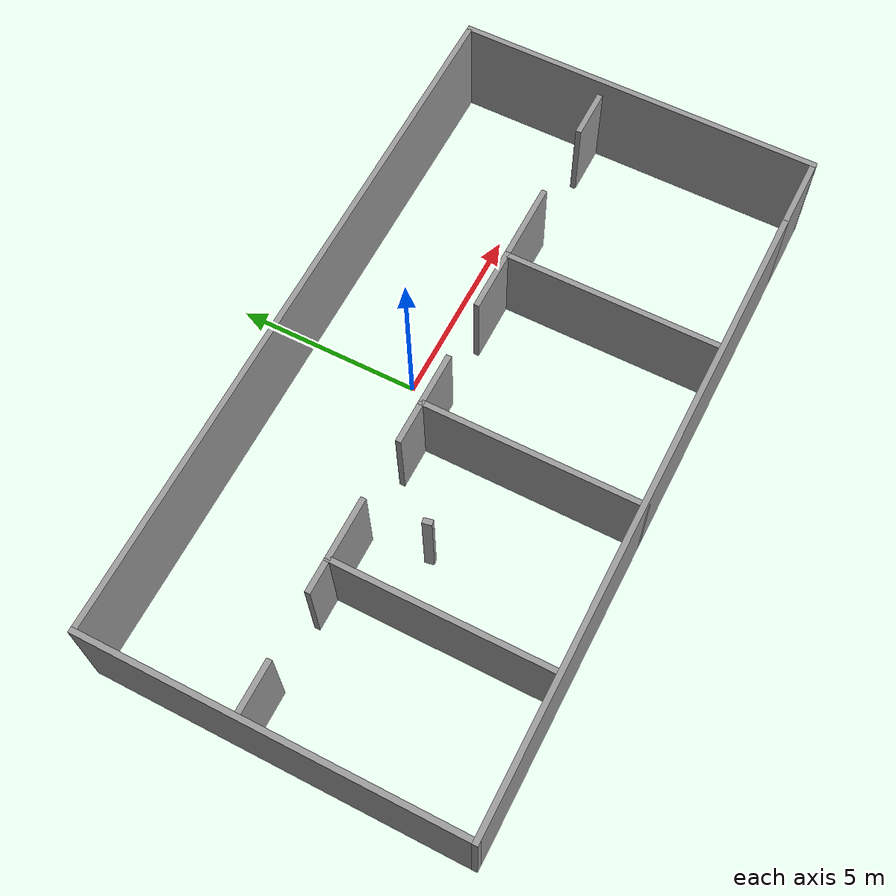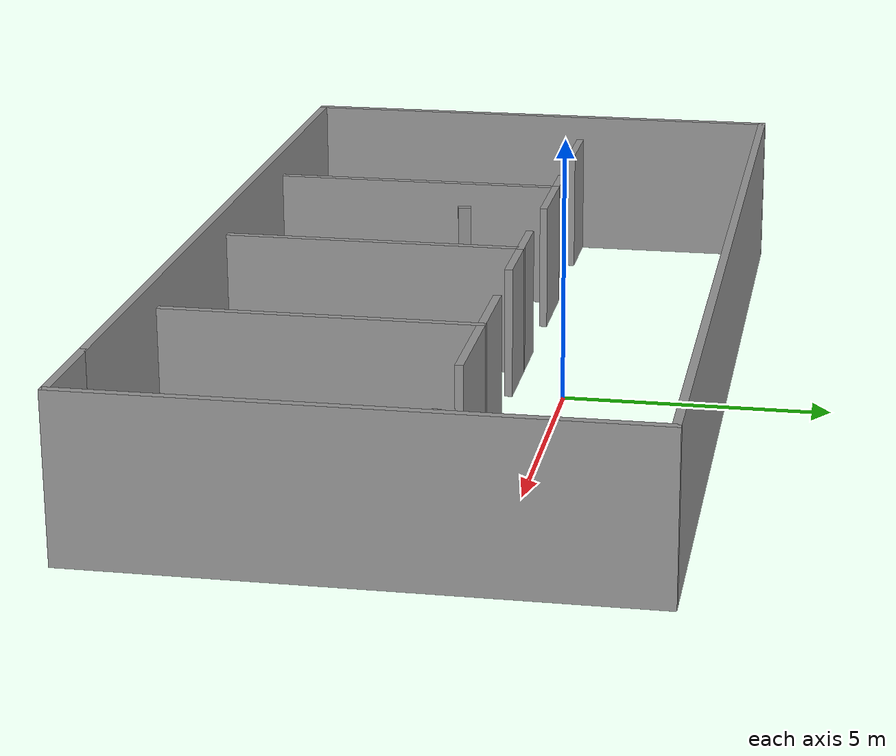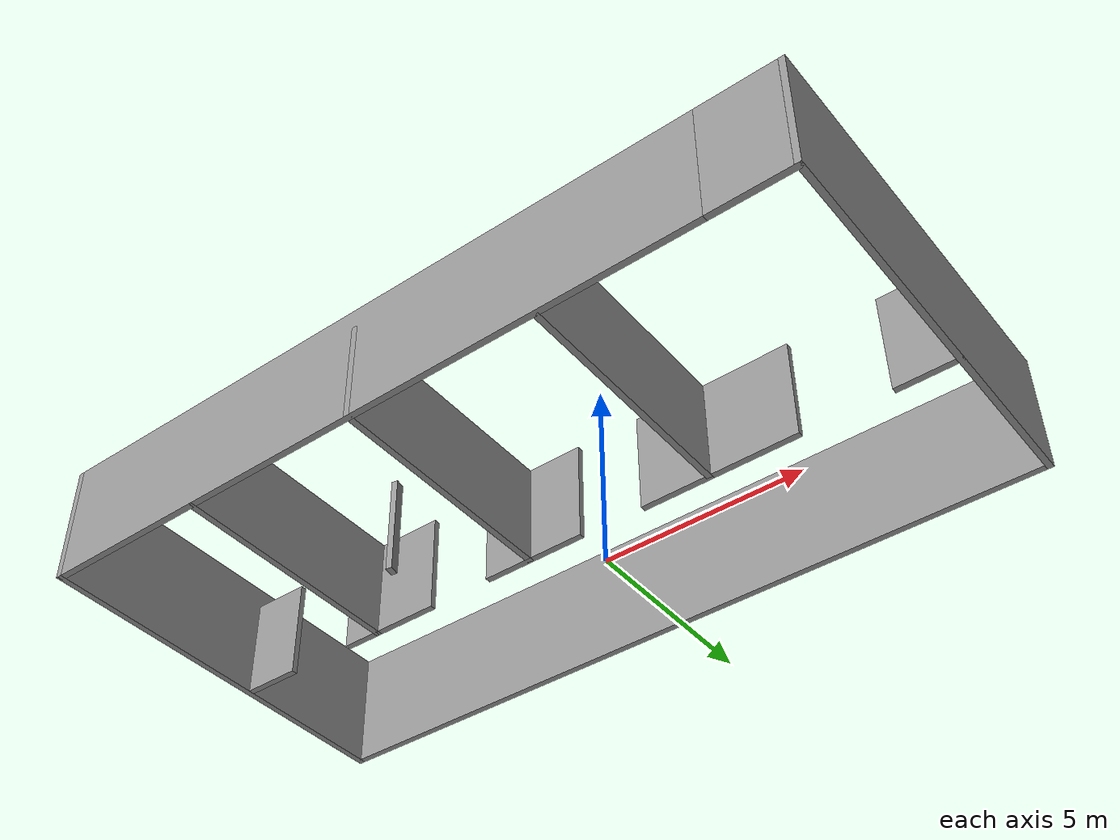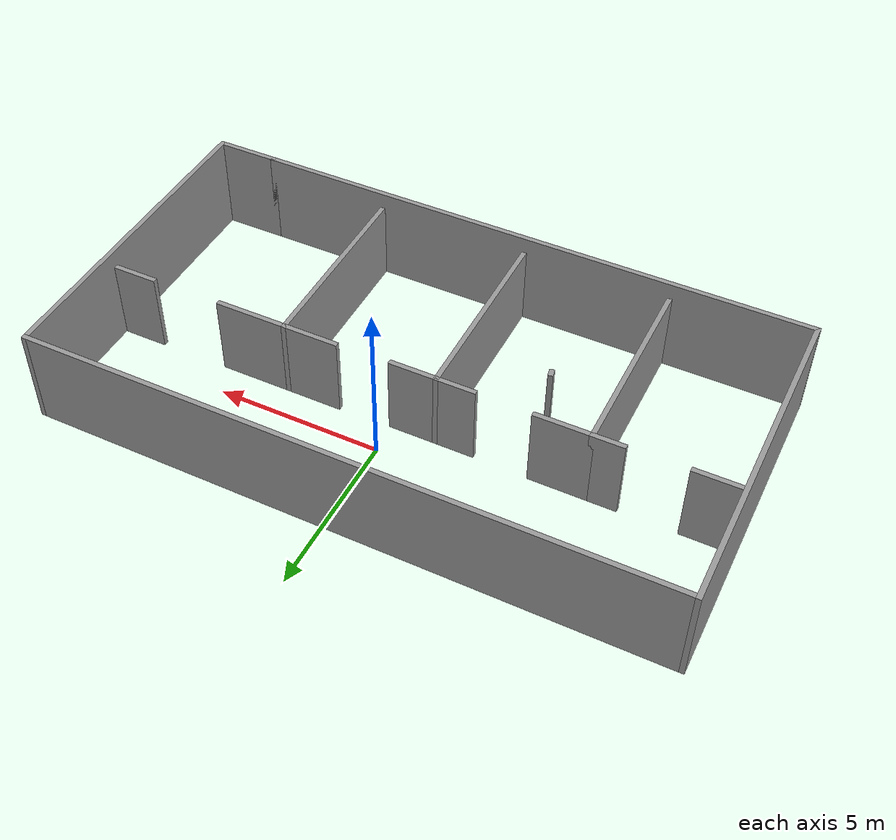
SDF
<?xml version='1.0'?>
<sdf version='1.7'>
  <model name='robotworld'>
    <pose>-0.438 -1.95903 0 0 -0 0</pose>
    <link name='Wall_12'>
      <collision name='Wall_12_Collision'>
        <geometry>
          <box>
            <size>2 0.15 3</size>
          </box>
        </geometry>
        <pose>0 0 1.5 0 -0 0</pose>
      </collision>
      <visual name='Wall_12_Visual'>
        <pose>0 0 1.5 0 -0 0</pose>
        <geometry>
          <box>
            <size>2 0.15 3</size>
          </box>
        </geometry>
        <material>
          <script>
            <uri>file://media/materials/scripts/gazebo.material</uri>
            <name>Gazebo/Grey</name>
          </script>
          <ambient>1 1 1 1</ambient>
        </material>
        <meta>
          <layer>0</layer>
        </meta>
      </visual>
      <pose>8.55 -4.92497 0 0 -0 0</pose>
    </link>
    <link name='Wall_13'>
      <collision name='Wall_13_Collision'>
        <geometry>
          <box>
            <size>10 0.15 3</size>
          </box>
        </geometry>
        <pose>0 0 1.5 0 -0 0</pose>
      </collision>
      <visual name='Wall_13_Visual'>
        <pose>0 0 1.5 0 -0 0</pose>
        <geometry>
          <box>
            <size>10 0.15 3</size>
          </box>
        </geometry>
        <material>
          <script>
            <uri>file://media/materials/scripts/gazebo.material</uri>
            <name>Gazebo/Grey</name>
          </script>
          <ambient>1 1 1 1</ambient>
        </material>
        <meta>
          <layer>0</layer>
        </meta>
      </visual>
      <pose>9.475 2.5e-05 0 0 -0 1.5708</pose>
    </link>
    <link name='Wall_15'>
      <collision name='Wall_15_Collision'>
        <geometry>
          <box>
            <size>6 0.15 2.5</size>
          </box>
        </geometry>
        <pose>0 0 1.25 0 -0 0</pose>
      </collision>
      <visual name='Wall_15_Visual'>
        <pose>0 0 1.25 0 -0 0</pose>
        <geometry>
          <box>
            <size>6 0.15 2.5</size>
          </box>
        </geometry>
        <material>
          <script>
            <uri>file://media/materials/scripts/gazebo.material</uri>
            <name>Gazebo/Grey</name>
          </script>
          <ambient>1 1 1 1</ambient>
        </material>
        <meta>
          <layer>0</layer>
        </meta>
      </visual>
      <pose>-5.3485 -1.97358 0 0 -0 1.5708</pose>
    </link>
    <link name='Wall_17'>
      <collision name='Wall_17_Collision'>
        <geometry>
          <box>
            <size>6 0.15 2.5</size>
          </box>
        </geometry>
        <pose>0 0 1.25 0 -0 0</pose>
      </collision>
      <visual name='Wall_17_Visual'>
        <pose>0 0 1.25 0 -0 0</pose>
        <geometry>
          <box>
            <size>6 0.15 2.5</size>
          </box>
        </geometry>
        <material>
          <script>
            <uri>file://media/materials/scripts/gazebo.material</uri>
            <name>Gazebo/Grey</name>
          </script>
          <ambient>1 1 1 1</ambient>
        </material>
        <meta>
          <layer>0</layer>
        </meta>
      </visual>
      <pose>-0.87845 -2.00002 0 0 -0 1.5708</pose>
    </link>
    <link name='Wall_19'>
      <collision name='Wall_19_Collision'>
        <geometry>
          <box>
            <size>6 0.15 2.5</size>
          </box>
        </geometry>
        <pose>0 0 1.25 0 -0 0</pose>
      </collision>
      <visual name='Wall_19_Visual'>
        <pose>0 0 1.25 0 -0 0</pose>
        <geometry>
          <box>
            <size>6 0.15 2.5</size>
          </box>
        </geometry>
        <material>
          <script>
            <uri>file://media/materials/scripts/gazebo.material</uri>
            <name>Gazebo/Grey</name>
          </script>
          <ambient>1 1 1 1</ambient>
        </material>
        <meta>
          <layer>0</layer>
        </meta>
      </visual>
      <pose>3.77675 -1.94712 0 0 -0 1.5708</pose>
    </link>
    <link name='Wall_2'>
      <collision name='Wall_2_Collision'>
        <geometry>
          <box>
            <size>0.25198 0.15 2.5</size>
          </box>
        </geometry>
        <pose>0 0 1.25 0 -0 0</pose>
      </collision>
      <visual name='Wall_2_Visual'>
        <pose>0 0 1.25 0 -0 0</pose>
        <geometry>
          <box>
            <size>0.25198 0.15 2.5</size>
          </box>
        </geometry>
        <material>
          <script>
            <uri>file://media/materials/scripts/gazebo.material</uri>
            <name>Gazebo/Grey</name>
          </script>
          <ambient>0 0 0 1</ambient>
        </material>
        <meta>
          <layer>0</layer>
        </meta>
      </visual>
      <pose>-3.522 -0.640975 0 0 -0 1.76819</pose>
    </link>
    <link name='Wall_22'>
      <collision name='Wall_22_Collision'>
        <geometry>
          <box>
            <size>19.0997 0.15 3</size>
          </box>
        </geometry>
        <pose>0 0 1.5 0 -0 0</pose>
      </collision>
      <visual name='Wall_22_Visual'>
        <pose>0 0 1.5 0 -0 0</pose>
        <geometry>
          <box>
            <size>19.0997 0.15 3</size>
          </box>
        </geometry>
        <material>
          <script>
            <uri>file://media/materials/scripts/gazebo.material</uri>
            <name>Gazebo/Grey</name>
          </script>
          <ambient>1 1 1 1</ambient>
        </material>
        <meta>
          <layer>0</layer>
        </meta>
      </visual>
      <pose>0 4.92502 0 0 -0 0</pose>
    </link>
    <link name='Wall_24'>
      <collision name='Wall_24_Collision'>
        <geometry>
          <box>
            <size>1.5 0.15 2.5</size>
          </box>
        </geometry>
        <pose>0 0 1.25 0 -0 0</pose>
      </collision>
      <visual name='Wall_24_Visual'>
        <pose>0 0 1.25 0 -0 0</pose>
        <geometry>
          <box>
            <size>1.5 0.15 2.5</size>
          </box>
        </geometry>
        <material>
          <script>
            <uri>file://media/materials/scripts/gazebo.material</uri>
            <name>Gazebo/Grey</name>
          </script>
          <ambient>1 1 1 1</ambient>
        </material>
        <meta>
          <layer>0</layer>
        </meta>
      </visual>
      <pose>-8.72035 0.920425 0 0 -0 0</pose>
    </link>
    <link name='Wall_26'>
      <collision name='Wall_26_Collision'>
        <geometry>
          <box>
            <size>1 0.15 2.5</size>
          </box>
        </geometry>
        <pose>0 0 1.25 0 -0 0</pose>
      </collision>
      <visual name='Wall_26_Visual'>
        <pose>0 0 1.25 0 -0 0</pose>
        <geometry>
          <box>
            <size>1 0.15 2.5</size>
          </box>
        </geometry>
        <material>
          <script>
            <uri>file://media/materials/scripts/gazebo.material</uri>
            <name>Gazebo/Grey</name>
          </script>
          <ambient>1 1 1 1</ambient>
        </material>
        <meta>
          <layer>0</layer>
        </meta>
      </visual>
      <pose>-5.7735 0.951425 0 0 -0 3.14159</pose>
    </link>
    <link name='Wall_28'>
      <collision name='Wall_28_Collision'>
        <geometry>
          <box>
            <size>1.75 0.15 2.5</size>
          </box>
        </geometry>
        <pose>0 0 1.25 0 -0 0</pose>
      </collision>
      <visual name='Wall_28_Visual'>
        <pose>0 0 1.25 0 -0 0</pose>
        <geometry>
          <box>
            <size>1.75 0.15 2.5</size>
          </box>
        </geometry>
        <material>
          <script>
            <uri>file://media/materials/scripts/gazebo.material</uri>
            <name>Gazebo/Grey</name>
          </script>
          <ambient>1 1 1 1</ambient>
        </material>
        <meta>
          <layer>0</layer>
        </meta>
      </visual>
      <pose>-4.5485 0.951425 0 0 -0 0</pose>
    </link>
    <link name='Wall_32'>
      <collision name='Wall_32_Collision'>
        <geometry>
          <box>
            <size>1.25 0.15 2.5</size>
          </box>
        </geometry>
        <pose>0 0 1.25 0 -0 0</pose>
      </collision>
      <visual name='Wall_32_Visual'>
        <pose>0 0 1.25 0 -0 0</pose>
        <geometry>
          <box>
            <size>1.25 0.15 2.5</size>
          </box>
        </geometry>
        <material>
          <script>
            <uri>file://media/materials/scripts/gazebo.material</uri>
            <name>Gazebo/Grey</name>
          </script>
          <ambient>1 1 1 1</ambient>
        </material>
        <meta>
          <layer>0</layer>
        </meta>
      </visual>
      <pose>-1.42845 0.924975 0 0 -0 3.14159</pose>
    </link>
    <link name='Wall_34'>
      <collision name='Wall_34_Collision'>
        <geometry>
          <box>
            <size>1.5 0.15 2.5</size>
          </box>
        </geometry>
        <pose>0 0 1.25 0 -0 0</pose>
      </collision>
      <visual name='Wall_34_Visual'>
        <pose>0 0 1.25 0 -0 0</pose>
        <geometry>
          <box>
            <size>1.5 0.15 2.5</size>
          </box>
        </geometry>
        <material>
          <script>
            <uri>file://media/materials/scripts/gazebo.material</uri>
            <name>Gazebo/Grey</name>
          </script>
          <ambient>1 1 1 1</ambient>
        </material>
        <meta>
          <layer>0</layer>
        </meta>
      </visual>
      <pose>-0.20345 0.924975 0 0 -0 0</pose>
    </link>
    <link name='Wall_36'>
      <collision name='Wall_36_Collision'>
        <geometry>
          <box>
            <size>1.75 0.15 2.5</size>
          </box>
        </geometry>
        <pose>0 0 1.25 0 -0 0</pose>
      </collision>
      <visual name='Wall_36_Visual'>
        <pose>0 0 1.25 0 -0 0</pose>
        <geometry>
          <box>
            <size>1.75 0.15 2.5</size>
          </box>
        </geometry>
        <material>
          <script>
            <uri>file://media/materials/scripts/gazebo.material</uri>
            <name>Gazebo/Grey</name>
          </script>
          <ambient>1 1 1 1</ambient>
        </material>
        <meta>
          <layer>0</layer>
        </meta>
      </visual>
      <pose>2.97675 0.977875 0 0 -0 3.14159</pose>
    </link>
    <link name='Wall_38'>
      <collision name='Wall_38_Collision'>
        <geometry>
          <box>
            <size>2.25 0.15 2.5</size>
          </box>
        </geometry>
        <pose>0 0 1.25 0 -0 0</pose>
      </collision>
      <visual name='Wall_38_Visual'>
        <pose>0 0 1.25 0 -0 0</pose>
        <geometry>
          <box>
            <size>2.25 0.15 2.5</size>
          </box>
        </geometry>
        <material>
          <script>
            <uri>file://media/materials/scripts/gazebo.material</uri>
            <name>Gazebo/Grey</name>
          </script>
          <ambient>1 1 1 1</ambient>
        </material>
        <meta>
          <layer>0</layer>
        </meta>
      </visual>
      <pose>4.82675 0.977875 0 0 -0 0</pose>
    </link>
    <link name='Wall_4'>
      <collision name='Wall_4_Collision'>
        <geometry>
          <box>
            <size>10 0.15 3</size>
          </box>
        </geometry>
        <pose>0 0 1.5 0 -0 0</pose>
      </collision>
      <visual name='Wall_4_Visual'>
        <pose>0 0 1.5 0 -0 0</pose>
        <geometry>
          <box>
            <size>10 0.15 3</size>
          </box>
        </geometry>
        <material>
          <script>
            <uri>file://media/materials/scripts/gazebo.material</uri>
            <name>Gazebo/Grey</name>
          </script>
          <ambient>1 1 1 1</ambient>
        </material>
        <meta>
          <layer>0</layer>
        </meta>
      </visual>
      <pose>-9.475 2.5e-05 0 0 -0 1.5708</pose>
    </link>
    <link name='Wall_40'>
      <collision name='Wall_40_Collision'>
        <geometry>
          <box>
            <size>1.5 0.15 2.5</size>
          </box>
        </geometry>
        <pose>0 0 1.25 0 -0 0</pose>
      </collision>
      <visual name='Wall_40_Visual'>
        <pose>0 0 1.25 0 -0 0</pose>
        <geometry>
          <box>
            <size>1.5 0.15 2.5</size>
          </box>
        </geometry>
        <material>
          <script>
            <uri>file://media/materials/scripts/gazebo.material</uri>
            <name>Gazebo/Grey</name>
          </script>
          <ambient>1 1 1 1</ambient>
        </material>
        <meta>
          <layer>0</layer>
        </meta>
      </visual>
      <pose>8.7885 0.999775 0 0 -0 3.14159</pose>
    </link>
    <link name='Wall_6'>
      <collision name='Wall_6_Collision'>
        <geometry>
          <box>
            <size>17.25 0.15 3</size>
          </box>
        </geometry>
        <pose>0 0 1.5 0 -0 0</pose>
      </collision>
      <visual name='Wall_6_Visual'>
        <pose>0 0 1.5 0 -0 0</pose>
        <geometry>
          <box>
            <size>17.25 0.15 3</size>
          </box>
        </geometry>
        <material>
          <script>
            <uri>file://media/materials/scripts/gazebo.material</uri>
            <name>Gazebo/Grey</name>
          </script>
          <ambient>1 1 1 1</ambient>
        </material>
        <meta>
          <layer>0</layer>
        </meta>
      </visual>
      <pose>-0.925 -4.92497 0 0 -0 0</pose>
    </link>
    <static>1</static>
  </model>
</sdf>
